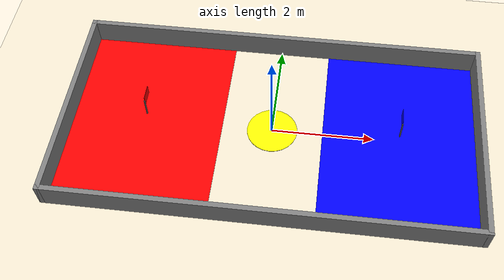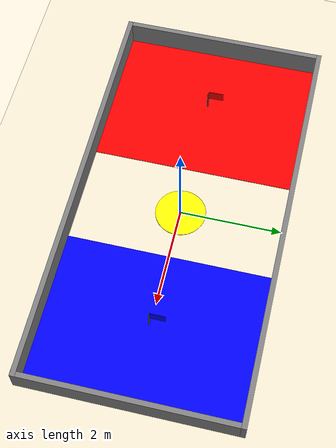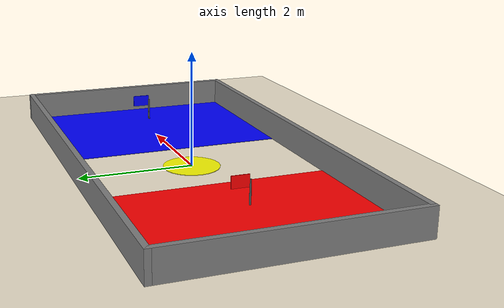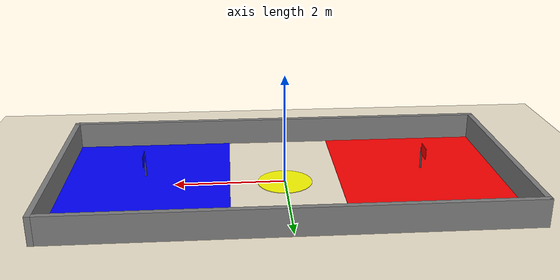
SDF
<?xml version="1.0" ?>

<sdf version="1.8">

  <world name='capture_the_flag_world'>

    <plugin name='ignition::gazebo::systems::Physics' filename='ignition-gazebo-physics-system'/>
    <plugin name='ignition::gazebo::systems::UserCommands' filename='ignition-gazebo-user-commands-system'/>
    <plugin name='ignition::gazebo::systems::SceneBroadcaster' filename='ignition-gazebo-scene-broadcaster-system'/>

    <plugin filename="ignition-gazebo-sensors-system" name="ignition::gazebo::systems::Sensors">
      <render_engine>ogre2</render_engine>
    </plugin>

    <plugin filename="libignition-gazebo-contact-system.so" name="ignition::gazebo::systems::Contact">
    </plugin>

    <scene>
      <ambient>1.0 1.0 1.0</ambient>
      <background>0.8 0.8 0.8</background>
    </scene>

    <light type="directional" name="sun">
      <cast_shadows>true</cast_shadows>
      <pose>0 0 10 0 0 0</pose>
      <diffuse>0.8 0.8 0.8 1</diffuse>
      <specular>0.2 0.2 0.2 1</specular>
      <attenuation>
        <range>1000</range>
        <constant>0.9</constant>
        <linear>0.01</linear>
        <quadratic>0.001</quadratic>
      </attenuation>
      <direction>-0.5 0.1 -0.9</direction>
    </light>

    <model name='ground_plane'>
      <static>1</static>
      <self_collide>0</self_collide>
      <enable_wind>0</enable_wind>
      <kinematic>0</kinematic>

      <plugin filename="ignition-gazebo-label-system" name="ignition::gazebo::systems::Label">
        <label>5</label>
      </plugin>

      <link name='ground_plane_link'>
        <collision name='ground_plane_collision'>
          <geometry>
            <plane>
              <normal>0 0 1</normal>
              <size>100 100</size>
            </plane>
          </geometry>

        </collision>
        <visual name='ground_plane_visual'>
          <cast_shadows>0</cast_shadows>
          <geometry>
            <plane>
              <normal>0 0 1</normal>
              <size>100 100</size>
            </plane>
          </geometry>

          <material>
            <ambient>0.94 0.90 0.81 1</ambient>
            <diffuse>0.94 0.90 0.81 1</diffuse>
            <specular>1 1 1 0</specular>
          </material>

        </visual>
      </link>
    </model>

    <model name='red_base'>
      <pose>-2.5 0 0 0 0 0</pose>
      <self_collide>0</self_collide>
      <enable_wind>0</enable_wind>
      <kinematic>0</kinematic>
      <static>1</static>

      <plugin filename="ignition-gazebo-label-system" name="ignition::gazebo::systems::Label">
        <label>10</label>
      </plugin>

      <link name='red_base_link'>
        <collision name='red_base_collision'>
          <geometry>
            <box>
              <size>3 4 0.01</size>
            </box>
          </geometry>
          <max_contacts>10</max_contacts>
          <surface>
            <friction>
              <ode>
                <mu>100</mu>
                <mu2>50</mu2>
              </ode>
            </friction>
          </surface>
        </collision>
        <visual name='red_base_visual'>
          <geometry>
            <box>
              <size>3 4 0.01</size>
            </box>
          </geometry>
          <material>
            <ambient>1 0 0 1</ambient>
            <diffuse>1 0 0 1</diffuse>
          </material>
        </visual>
      </link>
    </model>

    <model name='blue_base'>
      <pose>2.5 0 0 0 0 0</pose>
      <static>1</static>
      <self_collide>0</self_collide>
      <enable_wind>0</enable_wind>
      <kinematic>0</kinematic>

      <plugin filename="ignition-gazebo-label-system" name="ignition::gazebo::systems::Label">
        <label>15</label>
      </plugin>

      <link name='blue_base_link'>

        <collision name='blue_base_Collision'>
          <geometry>
            <box>
              <size>3 4 0.01</size>
            </box>
          </geometry>
        </collision>

        <visual name='blue_base_Visual'>
          <geometry>
            <box>
              <size>3 4 0.01</size>
            </box>
          </geometry>
          <material>
            <ambient>0 0 1 1</ambient>
            <diffuse>0 0 1 1</diffuse>
          </material>
        </visual>

      </link>
    </model>

    <model name="red_flag">
      <static>false</static>

      <plugin filename="ignition-gazebo-label-system" name="ignition::gazebo::systems::Label">
        <label>20</label>
      </plugin>

      <link name="red_flag_link">
        <!-- Posição da base do objeto no mundo -->
        <pose>-2.5 0 0.2 0 0 1.57079</pose>

        <!-- Mastro (cilindro) -->
        <visual name="pole_visual">
          <pose>0 0 0.2 0 0 0</pose>
          <geometry>
            <cylinder>
              <radius>0.015</radius>
              <length>0.4</length>
            </cylinder>
          </geometry>
          <material>
            <ambient>0.2 0.2 0.2 1</ambient>
            <diffuse>0.3 0.3 0.3 1</diffuse>
          </material>
        </visual>

        <!-- Bandeira -->
        <visual name="red_flag_panel_visual">
          <pose>0.16 0 0.38 0 0 0</pose>
          <geometry>
            <box>
              <size>0.3 0.01 0.2</size>
            </box>
          </geometry>
          <material>
            <ambient>0.8 0 0 1</ambient>
            <diffuse>1 0 0 1</diffuse>
          </material>
        </visual>

        <!-- Colisão geral como uma caixa envolvendo tudo -->
        <collision name="red_flag_collision">
          <pose>0.08 0 0.2 0 0 0</pose>
          <geometry>
            <box>
              <size>0.35 0.02 0.4</size>
            </box>
          </geometry>
        </collision>

        <!-- Inércia aproximada -->
        <inertial>
          <mass>0.1</mass>
          <inertia>
            <ixx>0.001</ixx>
            <iyy>0.001</iyy>
            <izz>0.001</izz>
          </inertia>
        </inertial>
      </link>
    </model>

    <model name="blue_flag">
      <static>false</static>

      <plugin filename="ignition-gazebo-label-system" name="ignition::gazebo::systems::Label">
        <label>25</label>
      </plugin>

      <link name="blue_flag_link">
        <!-- Posição da base do objeto no mundo -->
        <pose>2.5 0 0.2 0 0 1.57079</pose>

        <!-- Mastro (cilindro) -->
        <visual name="pole_visual">
          <pose>0 0 0.2 0 0 0</pose>
          <geometry>
            <cylinder>
              <radius>0.015</radius>
              <length>0.4</length>
            </cylinder>
          </geometry>
          <material>
            <ambient>0.2 0.2 0.2 1</ambient>
            <diffuse>0.3 0.3 0.3 1</diffuse>
          </material>
        </visual>

        <!-- Bandeira -->
        <visual name="blue_flag_panel_visual">
          <pose>0.16 0 0.38 0 0 0</pose>
          <geometry>
            <box>
              <size>0.3 0.01 0.2</size>
            </box>
          </geometry>
          <material>
            <ambient>0.8 0 0 1</ambient>
            <diffuse>0 0 1 1</diffuse>
          </material>
        </visual>

        <!-- Colisão geral como uma caixa envolvendo tudo -->
        <collision name="blue_flag_collision">
          <pose>0.08 0 0.2 0 0 0</pose>
          <geometry>
            <box>
              <size>0.35 0.02 0.4</size>
            </box>
          </geometry>
        </collision>

        <!-- Inércia aproximada -->
        <inertial>
          <mass>0.1</mass>
          <inertia>
            <ixx>0.001</ixx>
            <iyy>0.001</iyy>
            <izz>0.001</izz>
          </inertia>
        </inertial>
      </link>

    </model>

    <model name='center_zone'>
      <pose>0 0 0 0 0 0</pose>
      <static>1</static>
      <self_collide>0</self_collide>
      <enable_wind>0</enable_wind>
      <kinematic>0</kinematic>

      <plugin filename="ignition-gazebo-label-system" name="ignition::gazebo::systems::Label">
        <label>30</label>
      </plugin>

      <link name='center_zone_link'>
        <collision name='center_zone_collision'>
          <geometry>
            <cylinder>
              <radius>0.5</radius>
              <length>0.01</length>
            </cylinder>
          </geometry>
          <max_contacts>10</max_contacts>
        </collision>
        <visual name='center_zone_visual'>
          <geometry>
            <cylinder>
              <radius>0.5</radius>
              <length>0.01</length>
            </cylinder>
          </geometry>
          <material>
            <ambient>1 1 0 1</ambient>
            <diffuse>1 1 0 1</diffuse>
          </material>
        </visual>
      </link>
    </model>

    <model name='paredes_arena'>
      <pose>0 0 0 0 0 0</pose>
      <scale>1 1 1</scale>

      <plugin filename="ignition-gazebo-label-system" name="ignition::gazebo::systems::Label">
        <label>35</label>
      </plugin>

      <link name='parede_lateral_inferior'>
        <pose>0 -2.05 0 0 -0 0</pose>
        <self_collide>0</self_collide>
        <enable_wind>0</enable_wind>
        <kinematic>0</kinematic>

        <collision name='parede_lateral_inferior_collision'>
          <pose>0 0 0.25 0 -0 0</pose>
          <geometry>
            <box>
              <size>8.2 0.1 0.5</size>
            </box>
          </geometry>

        </collision>
        <visual name='parede_lateral_inferior_visual'>
          <pose>0 0 0.25 0 -0 0</pose>

          <geometry>
            <box>
              <size>8.2 0.1 0.5</size>
            </box>
          </geometry>

          <material>
            <ambient>0.5 0.5 0.5 1</ambient>
            <diffuse>0.5 0.5 0.5 1</diffuse>
            <specular>0.1 0.1 0.1 1</specular>
          </material>

        </visual>
      </link>

      <link name='parede_fundo_blue'>
        <pose>4.05 0 0 0 -0 1.5708</pose>
        <self_collide>0</self_collide>
        <enable_wind>0</enable_wind>
        <kinematic>0</kinematic>

        <collision name='parede_fundo_blue_collision'>
          <pose>0 0 0.25 0 0 0</pose>
          <geometry>
            <box>
              <size>4.2 0.1 0.5</size>
            </box>
          </geometry>
        </collision>

        <visual name='parede_fundo_blue_visual'>
          <pose>0 0 0.25 0 -0 0</pose>
          <geometry>
            <box>
              <size>4.2 0.1 0.5</size>
            </box>
          </geometry>
          <material>
            <ambient>0.5 0.5 0.5 1</ambient>
            <diffuse>0.5 0.5 0.5 1</diffuse>
            <specular>0.1 0.1 0.1 1</specular>
          </material>

        </visual>

      </link>

      <link name='parede_lateral_superior'>
        <pose>0 2.05 0 0 0 3.14159</pose>
        <self_collide>0</self_collide>
        <enable_wind>0</enable_wind>
        <kinematic>0</kinematic>

        <collision name='parede_lateral_superior_collision'>
          <pose>0 0 0.25 0 -0 0</pose>
          <geometry>
            <box>
              <size>8.2 0.1 0.5</size>
            </box>
          </geometry>
        </collision>

        <visual name='parede_lateral_superior_visual'>
          <pose>0 0 0.25 0 0 0</pose>
          <geometry>
            <box>
              <size>8.2 0.1 0.5</size>
            </box>
          </geometry>
          <material>
            <ambient>0.5 0.5 0.5 1</ambient>
            <diffuse>0.5 0.5 0.5 1</diffuse>
            <specular>0.1 0.1 0.1 1</specular>
          </material>
        </visual>
      </link>

      <link name='parede_fund_red'>
        <pose>-4.05 0 0 0 0 -1.5708</pose>
        <self_collide>0</self_collide>
        <enable_wind>0</enable_wind>
        <kinematic>0</kinematic>

        <collision name='parede_fund_red_collision'>
          <pose>0 0 0.25 0 -0 0</pose>
          <geometry>
            <box>
              <size>4.2 0.1 0.5</size>
            </box>
          </geometry>
        </collision>

        <visual name='parede_fund_red_visual'>
          <pose>0 0 0.25 0 -0 0</pose>
          <geometry>
            <box>
              <size>4.2 0.1 0.5</size>
            </box>
          </geometry>
          <material>
            <ambient>0.5 0.5 0.5 1</ambient>
            <diffuse>0.5 0.5 0.5 1</diffuse>
            <specular>0.1 0.1 0.1 1</specular>
          </material>
        </visual>

      </link>

    </model>

  </world>
</sdf>
